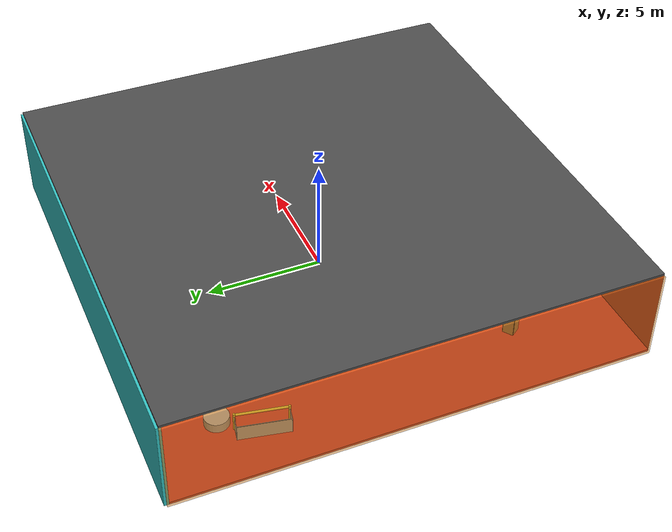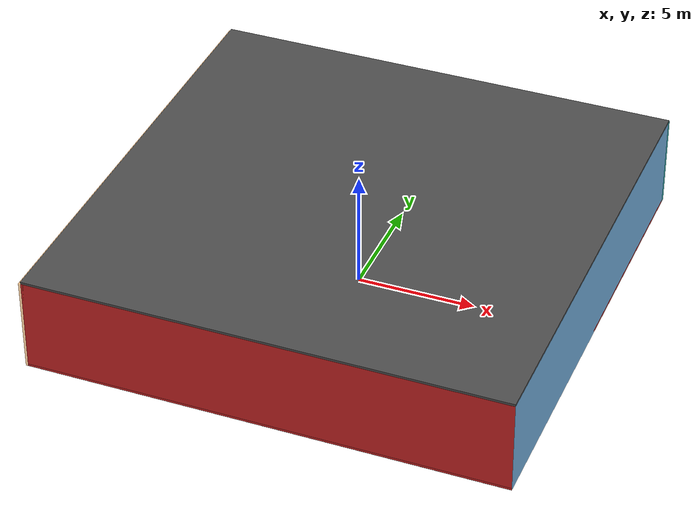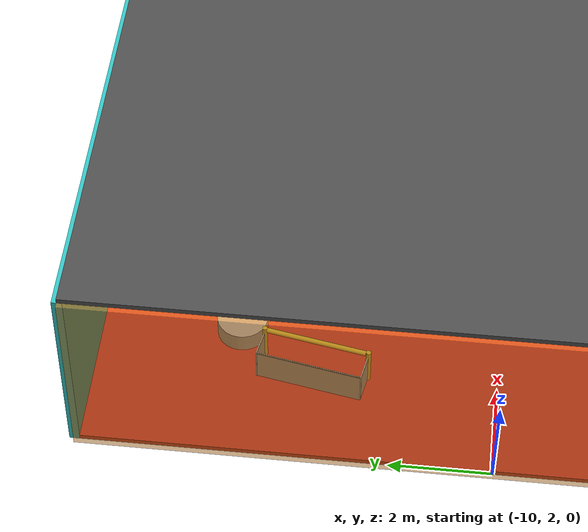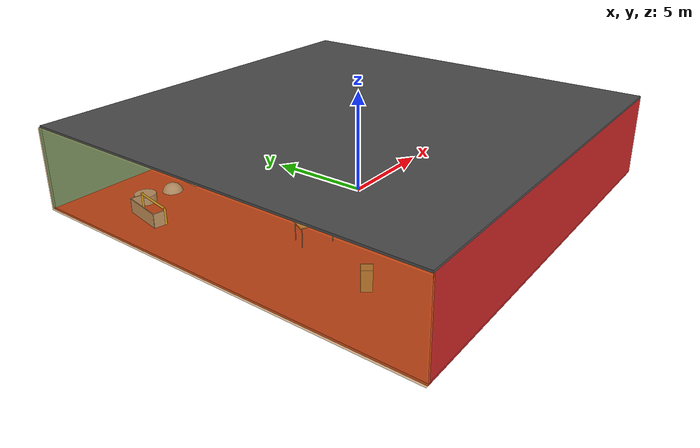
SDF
<sdf version="1.4">
 <world name="default">
  <physics type="ode">
   <max_step_size>0.001</max_step_size>
   <real_time_factor>1</real_time_factor>
   <real_time_update_rate>1000</real_time_update_rate>
   <gravity>0 0 -9.8</gravity>
  </physics>
  <scene><ambient>0.4 0.4 0.4 1</ambient><background>0.7 0.7 0.7 1</background><shadows>1</shadows></scene>
  <model name="Surrounding">
   <static>1</static>
   <link name="Ceiling">
    <collision name="Ceiling_Collision"><geometry><box><size>20 20 0.1</size></box></geometry></collision>
    <visual name="Ceiling_Visual">
     <geometry><box><size>20 20 0.1</size></box></geometry>
     <material>
      <script><uri>file://media/materials/scripts/gazebo.material</uri><name>Gazebo/Road</name></script>
     </material>
    </visual>
    <pose>0 0 4.05 0 0 0</pose>
   </link>
   <link name="Wall_South">
    <collision name="Wall_South_Collision">
     <geometry><box><size>20 0 4</size></box></geometry>
     <pose>0 0 2 0 -0 0</pose>
    </collision>
    <visual name="Wall_South_Visual">
     <pose>0 0 2 0 -0 0</pose>
     <geometry><box><size>20 0 4</size></box></geometry>
     <material>
      <script><uri>file://media/materials/scripts/gazebo.material</uri><name>Gazebo/RedGlow</name></script>
     </material>
    </visual>
    <velocity_decay><linear>0</linear><angular>0</angular></velocity_decay>
    <pose>0 -10 0 0 -0 0</pose>
   </link>
   <link name="Wall_East">
    <collision name="Wall_21_Collision">
     <geometry><box><size>20 0 4</size></box></geometry>
     <pose>0 0 2 0 -0 0</pose>
    </collision>
    <visual name="Wall_21_Visual">
     <pose>0 0 2 0 -0 0</pose>
     <geometry><box><size>20 0 4</size></box></geometry>
     <material>
      <script><uri>file://media/materials/scripts/gazebo.material</uri><name>Gazebo/SkyBlue</name></script>
     </material>
    </visual>
    <velocity_decay><linear>0</linear><angular>0</angular></velocity_decay>
    <pose>10 0 0 0 -0 1.5708</pose>
   </link>
   <link name="Wall_North">
    <collision name="Wall_22_Collision">
     <geometry><box><size>20 0.2 4</size></box></geometry>
     <pose>0 0 2 0 -0 0</pose>
    </collision>
    <visual name="Wall_22_Visual">
     <pose>0 0 2 0 -0 0</pose>
     <geometry><box><size>20 0.2 4</size></box></geometry>
     <material>
      <script><uri>file://media/materials/scripts/gazebo.material</uri><name>Gazebo/Turquoise</name></script>
     </material>
    </visual>
    <velocity_decay><linear>0</linear><angular>0</angular></velocity_decay>
    <pose>0 10 0 0 -0 0</pose>
   </link>
   <link name="Wall_West">
    <collision name="Wall_23_Collision">
     <geometry><box><size>20 0.2 4</size></box></geometry>
     <pose>0 0 2 0 -0 0</pose>
    </collision>
    <visual name="Wall_23_Visual">
     <pose>0 0 2 0 -0 0</pose>
     <geometry><box><size>20 0.2 4</size></box></geometry>
     <material>
      <script>
       <uri>file://media/materials/scripts/gazebo.material</uri>
       <name>Gazebo/OrangeTransparent</name>
      </script>
     </material>
    </visual>
    <velocity_decay><linear>0</linear><angular>0</angular></velocity_decay>
    <pose>-10 0 0 0 0 -1.5708</pose>
   </link>
   <link name="Ground_link">
    <collision name="collision">
     <pose>0 0 .05 0 -0 0</pose>
     <geometry><box><size>20 20 0.1</size></box></geometry>
    </collision>
    <visual name="visual">
     <pose>0 0 .05 0 -0 0</pose>
     <geometry><box><size>20 20 0.1</size></box></geometry>
     <material>
      <script><uri>file://media/materials/scripts/gazebo.material</uri><name>Gazebo/RedGlow</name></script>
     </material>
    </visual>
   </link>
   <static>1</static>
  </model>
  <spherical_coordinates>
   <surface_model>EARTH_WGS84</surface_model>
   <latitude_deg>0</latitude_deg>
   <longitude_deg>0</longitude_deg>
   <elevation>0</elevation>
   <heading_deg>0</heading_deg>
  </spherical_coordinates>
  <light name="lightball_0" type="diffuse">
   <diffuse>0.8 0.8 0.8 1</diffuse>
   <specular>0.2 0.2 0.2 1</specular>
   <attenuation>
    <range>100</range>
    <constant>0.7</constant>
    <linear>0.01</linear>
    <quadratic>0.001</quadratic>
   </attenuation>
   <direction>-0.5 0.1 -0.9</direction>
   <pose>-3.16939231551 -8.1645843845 0.595369040762 0 0 0</pose>
  </light>
  <light name="lightball_1" type="diffuse">
   <diffuse>0.8 0.8 0.8 1</diffuse>
   <specular>0.2 0.2 0.2 1</specular>
   <attenuation>
    <range>100</range>
    <constant>0.7</constant>
    <linear>0.01</linear>
    <quadratic>0.001</quadratic>
   </attenuation>
   <direction>-0.5 0.1 -0.9</direction>
   <pose>-2.61173589014 1.95153103556 2.55217458066 0 0 0</pose>
  </light>
  <light name="lightball_2" type="diffuse">
   <diffuse>0.8 0.8 0.8 1</diffuse>
   <specular>0.2 0.2 0.2 1</specular>
   <attenuation>
    <range>100</range>
    <constant>0.7</constant>
    <linear>0.01</linear>
    <quadratic>0.001</quadratic>
   </attenuation>
   <direction>-0.5 0.1 -0.9</direction>
   <pose>-7.2538024144 5.08802524173 0.808796176357 0 0 0</pose>
  </light>
  <light name="lightball_3" type="diffuse">
   <diffuse>0.8 0.8 0.8 1</diffuse>
   <specular>0.2 0.2 0.2 1</specular>
   <attenuation>
    <range>100</range>
    <constant>0.7</constant>
    <linear>0.01</linear>
    <quadratic>0.001</quadratic>
   </attenuation>
   <direction>-0.5 0.1 -0.9</direction>
   <pose>-9.79015375251 -3.74061281954 1.33503305739 0 0 0</pose>
  </light>
  <light name="lightball_4" type="diffuse">
   <diffuse>0.8 0.8 0.8 1</diffuse>
   <specular>0.2 0.2 0.2 1</specular>
   <attenuation>
    <range>100</range>
    <constant>0.7</constant>
    <linear>0.01</linear>
    <quadratic>0.001</quadratic>
   </attenuation>
   <direction>-0.5 0.1 -0.9</direction>
   <pose>-0.828661346596 4.51146019968 0.802566692826 0 0 0</pose>
  </light>
  <light name="lightball_5" type="diffuse">
   <diffuse>0.8 0.8 0.8 1</diffuse>
   <specular>0.2 0.2 0.2 1</specular>
   <attenuation>
    <range>100</range>
    <constant>0.7</constant>
    <linear>0.01</linear>
    <quadratic>0.001</quadratic>
   </attenuation>
   <direction>-0.5 0.1 -0.9</direction>
   <pose>-0.414298621277 -2.92836406326 1.81158264585 0 0 0</pose>
  </light>
  <light name="lightball_6" type="diffuse">
   <diffuse>0.8 0.8 0.8 1</diffuse>
   <specular>0.2 0.2 0.2 1</specular>
   <attenuation>
    <range>100</range>
    <constant>0.7</constant>
    <linear>0.01</linear>
    <quadratic>0.001</quadratic>
   </attenuation>
   <direction>-0.5 0.1 -0.9</direction>
   <pose>-5.69011343798 -1.81529098996 1.46213948317 0 0 0</pose>
  </light>
  <light name="lightball_7" type="diffuse">
   <diffuse>0.8 0.8 0.8 1</diffuse>
   <specular>0.2 0.2 0.2 1</specular>
   <attenuation>
    <range>100</range>
    <constant>0.7</constant>
    <linear>0.01</linear>
    <quadratic>0.001</quadratic>
   </attenuation>
   <direction>-0.5 0.1 -0.9</direction>
   <pose>9.10164294088 9.89512068076 3.77147998707 0 0 0</pose>
  </light>
  <include><uri>model://cabinet</uri><pose>-6.90676192285 -5.47517689631 0 0 0 2.19047437113</pose></include>
  <include>
   <uri>model://robocup_3Dsim_goal</uri>
   <pose>-7.83261109104 5.56696341228 0 0 0 2.95233586339</pose>
  </include>
  <include><uri>model://table</uri><pose>-5.27636191967 -1.58285834236 0 0 0 2.66074765388</pose></include>
  <include>
   <uri>model://textured_shapes</uri>
   <pose>-5.59634153172 7.0103930691 0 0 0 1.50275597023</pose>
  </include>
  <include><uri>model://cabinet</uri><pose>5.04975637625 -1.99472875094 0 0 0 2.77978983158</pose></include>
  <include><uri>model://cabinet</uri><pose>7.13830652017 -8.35877112667 0 0 0 1.92239782242</pose></include>
 </world>
</sdf>

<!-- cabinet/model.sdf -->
<sdf version="1.5">
  <model name="cabinet">
    <static>true</static>
    <link name="cabinet_bottom_plate">
      <inertial>
        <pose>0 0 -1 0 0 0</pose>
        <inertia>
          <ixx>2.050000</ixx>
          <ixy>0</ixy>
          <ixz>0</ixz>
          <iyy>2.050000</iyy>
          <iyz>0</iyz>
          <izz>2.050000</izz>
        </inertia>
        <mass>25.000000</mass>
      </inertial>
      <collision name="cabinet_bottom_plate_geom">
        <pose>0 0 0.010000 0 0 0</pose>
        <geometry>
          <box>
            <size>0.450000 0.450000 0.020000</size>
          </box>
        </geometry>
      </collision>
      <visual name="cabinet_bottom_plate_geom_visual">
        <pose>0 0 0.010000 0 0 0</pose>
        <geometry>
          <box>
            <size>0.450000 0.450000 0.020000</size>
          </box>
        </geometry>
        <material>
          <script>
            <uri>model://media/materials/scripts/gazebo.material</uri>
            <name>Gazebo/Wood</name>
          </script>
        </material>
      </visual>
      <collision name="cabinet_bottom_plate_geom_cabinet_back_plate">
        <pose>0.235000 0 0.510000 0 0 0</pose>
        <geometry>
          <box>
            <size>0.020000 0.450000 1.020000</size>
          </box>
        </geometry>
      </collision>
      <visual name="cabinet_bottom_plate_geom_cabinet_back_plate_visual">
        <pose>0.235000 0 0.510000 0 0 0</pose>
        <geometry>
          <box>
            <size>0.020000 0.450000 1.020000</size>
          </box>
        </geometry>
        <material>
          <script>
            <uri>model://media/materials/scripts/gazebo.material</uri>
            <name>Gazebo/Wood</name>
          </script>
        </material>
      </visual>
      <collision name="cabinet_bottom_plate_geom_cabinet_left_plate">
        <pose>0 0.235000 0.510000 0 0 0</pose>
        <geometry>
          <box>
            <size>0.450000 0.020000 1.020000</size>
          </box>
        </geometry>
      </collision>
      <visual name="cabinet_bottom_plate_geom_cabinet_left_plate_visual">
        <pose>0 0.235000 0.510000 0 0 0</pose>
        <geometry>
          <box>
            <size>0.450000 0.020000 1.020000</size>
          </box>
        </geometry>
        <material>
          <script>
            <uri>model://media/materials/scripts/gazebo.material</uri>
            <name>Gazebo/Wood</name>
          </script>
        </material>
      </visual>
      <collision name="cabinet_bottom_plate_geom_cabinet_middle_plate">
        <pose>0 0 0.510000 0 0 0</pose>
        <geometry>
          <box>
            <size>0.450000 0.450000 0.020000</size>
          </box>
        </geometry>
      </collision>
      <visual name="cabinet_bottom_plate_geom_cabinet_middle_plate_visual">
        <pose>0 0 0.510000 0 0 0</pose>
        <geometry>
          <box>
            <size>0.450000 0.450000 0.020000</size>
          </box>
        </geometry>
        <material>
          <script>
            <uri>model://media/materials/scripts/gazebo.material</uri>
            <name>Gazebo/Wood</name>
          </script>
        </material>
      </visual>
      <collision name="cabinet_bottom_plate_geom_cabinet_right_plate">
        <pose>0 -0.235000 0.510000 0 0 0</pose>
        <geometry>
          <box>
            <size>0.450000 0.020000 1.020000</size>
          </box>
        </geometry>
      </collision>
      <visual name="cabinet_bottom_plate_geom_cabinet_right_plate_visual">
        <pose>0 -0.235000 0.510000 0 0 0</pose>
        <geometry>
          <box>
            <size>0.450000 0.020000 1.020000</size>
          </box>
        </geometry>
        <material>
          <script>
            <uri>model://media/materials/scripts/gazebo.material</uri>
            <name>Gazebo/Wood</name>
          </script>
        </material>
      </visual>
      <collision name="cabinet_bottom_plate_geom_cabinet_top_plate">
        <pose>0 0 1.010000 0 0 0</pose>
        <geometry>
          <box>
            <size>0.450000 0.450000 0.020000</size>
          </box>
        </geometry>
      </collision>
      <visual name="cabinet_bottom_plate_geom_cabinet_top_plate_visual">
        <pose>0 0 1.010000 0 0 0</pose>
        <geometry>
          <box>
            <size>0.450000 0.450000 0.020000</size>
          </box>
        </geometry>
        <material>
          <script>
            <uri>model://media/materials/scripts/gazebo.material</uri>
            <name>Gazebo/Wood</name>
          </script>
        </material>
      </visual>
    </link>
  </model>
</sdf>

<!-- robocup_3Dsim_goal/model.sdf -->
<sdf version="1.5">
  <model name="robocup_3d_goal">
    <static>true</static>
    <link name="left_post">
      <pose>0 1.05 0.45 0 0 0</pose>
      <collision name="collision">
        <geometry>
          <cylinder>
            <radius>0.05</radius>
            <length>0.9</length>
          </cylinder>
        </geometry>
      </collision>
      <visual name="visual">
        <geometry>
          <cylinder>
            <radius>0.05</radius>
            <length>0.9</length>
          </cylinder>
        </geometry>
        <material>
          <script>
            <uri>file://media/materials/scripts/gazebo.material</uri>
            <name>Gazebo/ZincYellow</name>
          </script>
        </material>
      </visual>
    </link>
    <link name="left_support_horiz_lower">
      <pose>0.30 1.05 0.01 0 0 0</pose>
      <collision name="collision">
        <geometry>
          <box>
            <size>0.50 0.02 0.02</size>
          </box>
        </geometry>
      </collision>
      <visual name="visual">
        <geometry>
          <box>
            <size>0.50 0.02 0.02</size>
          </box>
        </geometry>
        <material>
          <script>
            <uri>file://media/materials/scripts/gazebo.material</uri>
            <name>Gazebo/White</name>
          </script>
        </material>
      </visual>
    </link>
    <link name="left_support_horiz_upper">
      <pose>0.30 1.05 0.79 0 0 0</pose>
      <collision name="collision">
        <geometry>
          <box>
            <size>0.50 0.02 0.02</size>
          </box>
        </geometry>
      </collision>
      <visual name="visual">
        <geometry>
          <box>
            <size>0.50 0.02 0.02</size>
          </box>
        </geometry>
        <material>
          <script>
            <uri>file://media/materials/scripts/gazebo.material</uri>
            <name>Gazebo/White</name>
          </script>
        </material>
      </visual>
    </link>
    <link name="left_support_vertical">
      <pose>0.56 1.05 0.4 0 1.5708 0</pose>
      <collision name="collision">
        <geometry>
          <box>
            <size>0.80 0.02 0.02</size>
          </box>
        </geometry>
      </collision>
      <visual name="visual">
        <geometry>
          <box>
            <size>0.80 0.02 0.02</size>
          </box>
        </geometry>
        <material>
          <script>
            <uri>file://media/materials/scripts/gazebo.material</uri>
            <name>Gazebo/White</name>
          </script>
        </material>
      </visual>
    </link>
    <link name="right_support_horiz_lower">
      <pose>0.30 -1.05 0.01 0 0 0</pose>
      <collision name="collision">
        <geometry>
          <box>
            <size>0.50 0.02 0.02</size>
          </box>
        </geometry>
      </collision>
      <visual name="visual">
        <geometry>
          <box>
            <size>0.50 0.02 0.02</size>
          </box>
        </geometry>
        <material>
          <script>
            <uri>file://media/materials/scripts/gazebo.material</uri>
            <name>Gazebo/White</name>
          </script>
        </material>
      </visual>
    </link>
    <link name="right_support_horiz_upper">
      <pose>0.30 -1.05 0.79 0 0 0</pose>
      <collision name="collision">
        <geometry>
          <box>
            <size>0.50 0.02 0.02</size>
          </box>
        </geometry>
      </collision>
      <visual name="visual">
        <geometry>
          <box>
            <size>0.50 0.02 0.02</size>
          </box>
        </geometry>
        <material>
          <script>
            <uri>file://media/materials/scripts/gazebo.material</uri>
            <name>Gazebo/White</name>
          </script>
        </material>
      </visual>
    </link>
    <link name="right_support_vertical">
      <pose>0.56 -1.05 0.4 0 1.5708 0</pose>
      <collision name="collision">
        <geometry>
          <box>
            <size>0.80 0.02 0.02</size>
          </box>
        </geometry>
      </collision>
      <visual name="visual">
        <geometry>
          <box>
            <size>0.80 0.02 0.02</size>
          </box>
        </geometry>
        <material>
          <script>
            <uri>file://media/materials/scripts/gazebo.material</uri>
            <name>Gazebo/White</name>
          </script>
        </material>
      </visual>
    </link>
    <link name="center_support_horiz_lower">
      <pose>0.56 0 0.01 0 1.5708 0</pose>
      <collision name="collision">
        <geometry>
          <box>
            <size>0.02 2.08 0.02</size>
          </box>
        </geometry>
      </collision>
      <visual name="visual">
        <geometry>
          <box>
            <size>0.02 2.08 0.02</size>
          </box>
        </geometry>
        <material>
          <script>
            <uri>file://media/materials/scripts/gazebo.material</uri>
            <name>Gazebo/White</name>
          </script>
        </material>
      </visual>
    </link>
    <link name="center_support_horiz_upper">
      <pose>0.56 0 0.79 0 1.5708 0</pose>
      <collision name="collision">
        <geometry>
          <box>
            <size>0.02 2.08 0.02</size>
          </box>
        </geometry>
      </collision>
      <visual name="visual">
        <geometry>
          <box>
            <size>0.02 2.08 0.02</size>
          </box>
        </geometry>
        <material>
          <script>
            <uri>file://media/materials/scripts/gazebo.material</uri>
            <name>Gazebo/White</name>
          </script>
        </material>
      </visual>
    </link>
    <link name="right_post">
      <pose>0 -1.05 0.45 0 0 0</pose>
      <collision name="collision">
        <geometry>
          <cylinder>
            <radius>0.05</radius>
            <length>0.9</length>
          </cylinder>
        </geometry>
      </collision>
      <visual name="visual">
        <geometry>
          <cylinder>
            <radius>0.05</radius>
            <length>0.9</length>
          </cylinder>
        </geometry>
        <material>
          <script>
            <uri>file://media/materials/scripts/gazebo.material</uri>
            <name>Gazebo/ZincYellow</name>
          </script>
        </material>
      </visual>
    </link>
    <link name="crossbar">
      <pose>0 0 0.85 1.57 1.57 0</pose>
      <collision name="collision">
        <geometry>
          <cylinder>
            <radius>0.05</radius>
            <length>2.0</length>
          </cylinder>
        </geometry>
      </collision>
      <visual name="visual">
        <geometry>
          <cylinder>
            <radius>0.05</radius>
            <length>2.0</length>
          </cylinder>
        </geometry>
        <material>
          <script>
            <uri>file://media/materials/scripts/gazebo.material</uri>
            <name>Gazebo/ZincYellow</name>
          </script>
        </material>
      </visual>
    </link>
    <link name="center_net">
      <pose>0.56 0 0.40 0 0 0</pose>
      <collision name="collision">
        <geometry>
          <box>
            <size>0.01 2.1 0.80</size>
          </box>
        </geometry>
      </collision>
      <visual name="visual">
        <geometry>
          <box>
            <size>0.01 2.1 0.80</size>
          </box>
        </geometry>
        <material>
          <script>
            <uri>model://../model_source/models/robocup09_spl_field/materials/scripts/</uri>
            <uri>model://../model_source/models/robocup09_spl_field/materials/textures/</uri>
            <name>RoboCup/Net</name>
          </script>
        </material>
      </visual>
    </link>
    <link name="left_net">
      <pose>0.30 1.05 0.40 0 0 0</pose>
      <collision name="collision">
        <geometry>
          <box>
            <size>0.50 0.01 0.76</size>
          </box>
        </geometry>
      </collision>
      <visual name="visual">
        <geometry>
          <box>
            <size>0.50 0.01 0.76</size>
          </box>
        </geometry>
        <material>
          <script>
            <uri>model://../model_source/models/robocup09_spl_field/materials/scripts/</uri>
            <uri>model://../model_source/models/robocup09_spl_field/materials/textures/</uri>
            <name>RoboCup/Net</name>
          </script>
        </material>
      </visual>
    </link>
    <link name="right_net">
      <pose>0.30 -1.05 0.40 0 0 0</pose>
      <collision name="collision">
        <geometry>
          <box>
            <size>0.50 0.01 0.76</size>
          </box>
        </geometry>
      </collision>
      <visual name="visual">
        <geometry>
          <box>
            <size>0.50 0.01 0.76</size>
          </box>
        </geometry>
        <material>
          <script>
            <uri>model://../model_source/models/robocup09_spl_field/materials/scripts/</uri>
            <uri>model://../model_source/models/robocup09_spl_field/materials/textures/</uri>
            <name>RoboCup/Net</name>
          </script>
        </material>
      </visual>
    </link>
  </model>
</sdf>

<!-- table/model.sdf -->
<sdf version="1.5">
  <model name="table">
    <static>true</static>
    <link name="link">
      <collision name="surface">
        <pose>0 0 1.0 0 0 0</pose>
        <geometry>
          <box>
            <size>1.5 0.8 0.03</size>
          </box>
        </geometry>
        <surface>
          <friction>
            <ode>
              <mu>0.6</mu>
              <mu2>0.6</mu2>
            </ode>
          </friction>
        </surface>
      </collision>
      <visual name="visual1">
        <pose>0 0 1.0 0 0 0</pose>
        <geometry>
          <box>
            <size>1.5 0.8 0.03</size>
          </box>
        </geometry>
        <material>
          <script>
            <uri>model://media/materials/scripts/gazebo.material</uri>
            <name>Gazebo/Wood</name>
          </script>
        </material>
      </visual>
      <collision name="front_left_leg">
        <pose>0.68 0.38 0.5 0 0 0</pose>
        <geometry>
          <cylinder>
            <radius>0.02</radius>
            <length>1.0</length>
          </cylinder>
        </geometry>
      </collision>
      <visual name="front_left_leg">
        <pose>0.68 0.38 0.5 0 0 0</pose>
        <geometry>
          <cylinder>
            <radius>0.02</radius>
            <length>1.0</length>
          </cylinder>
        </geometry>
        <material>
          <script>
            <uri>model://media/materials/scripts/gazebo.material</uri>
            <name>Gazebo/Grey</name>
          </script>
        </material>
      </visual>
      <collision name="front_right_leg">
        <pose>0.68 -0.38 0.5 0 0 0</pose>
        <geometry>
          <cylinder>
            <radius>0.02</radius>
            <length>1.0</length>
          </cylinder>
        </geometry>
      </collision>
      <visual name="front_right_leg">
        <pose>0.68 -0.38 0.5 0 0 0</pose>
        <geometry>
          <cylinder>
            <radius>0.02</radius>
            <length>1.0</length>
          </cylinder>
        </geometry>
        <material>
          <script>
            <uri>model://media/materials/scripts/gazebo.material</uri>
            <name>Gazebo/Grey</name>
          </script>
        </material>
      </visual>
      <collision name="back_right_leg">
        <pose>-0.68 -0.38 0.5 0 0 0</pose>
        <geometry>
          <cylinder>
            <radius>0.02</radius>
            <length>1.0</length>
          </cylinder>
        </geometry>
      </collision>
      <visual name="back_right_leg">
        <pose>-0.68 -0.38 0.5 0 0 0</pose>
        <geometry>
          <cylinder>
            <radius>0.02</radius>
            <length>1.0</length>
          </cylinder>
        </geometry>
        <material>
          <script>
            <uri>model://media/materials/scripts/gazebo.material</uri>
            <name>Gazebo/Grey</name>
          </script>
        </material>
      </visual>
      <collision name="back_left_leg">
        <pose>-0.68 0.38 0.5 0 0 0</pose>
        <geometry>
          <cylinder>
            <radius>0.02</radius>
            <length>1.0</length>
          </cylinder>
        </geometry>
      </collision>
      <visual name="back_left_leg">
        <pose>-0.68 0.38 0.5 0 0 0</pose>
        <geometry>
          <cylinder>
            <radius>0.02</radius>
            <length>1.0</length>
          </cylinder>
        </geometry>
        <material>
          <script>
            <uri>model://media/materials/scripts/gazebo.material</uri>
            <name>Gazebo/Grey</name>
          </script>
        </material>
      </visual>
    </link>
  </model>
</sdf>

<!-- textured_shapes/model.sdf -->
<sdf version="1.6">
  <model name="textured_shapes">
    <pose>0 0 0.5 0 0 0</pose>
    <link name="box">
      <pose>0 -1.5 0 0 0 0</pose>
      <collision name="collision">
        <geometry>
          <box>
            <size>1 1 1</size>
          </box>
        </geometry>
      </collision>
      <visual name="visual">
        <geometry>
          <box>
            <size>1 1 1</size>
          </box>
        </geometry>
        <material>
          <script>
            <uri>model://../model_source/models/textured_shapes/materials/scripts</uri>
            <uri>model://../model_source/models/textured_shapes/materials/textures</uri>
            <name>TexturedShape/Squares</name>
          </script>
        </material>
      </visual>
    </link>
    <link name="sphere">
      <collision name="collision">
        <geometry>
          <sphere>
            <radius>0.5</radius>
          </sphere>
        </geometry>
      </collision>
      <visual name="visual">
        <geometry>
          <sphere>
            <radius>0.5</radius>
          </sphere>
        </geometry>
        <material>
          <script>
            <uri>model://../model_source/models/textured_shapes/materials/scripts</uri>
            <uri>model://../model_source/models/textured_shapes/materials/textures</uri>
            <name>TexturedShape/Squares</name>
          </script>
        </material>
      </visual>
    </link>
    <link name="cylinder">
      <pose>0 1.5 0 0 0 0</pose>
      <collision name="collision">
        <geometry>
          <cylinder>
            <radius>0.5</radius>
            <length>1</length>
          </cylinder>
        </geometry>
      </collision>
      <visual name="visual">
        <geometry>
          <cylinder>
            <radius>0.5</radius>
            <length>1</length>
          </cylinder>
        </geometry>
        <material>
          <script>
            <uri>model://../model_source/models/textured_shapes/materials/scripts</uri>
            <uri>model://../model_source/models/textured_shapes/materials/textures</uri>
            <name>TexturedShape/Squares</name>
          </script>
        </material>
      </visual>
    </link>
  </model>
</sdf>
